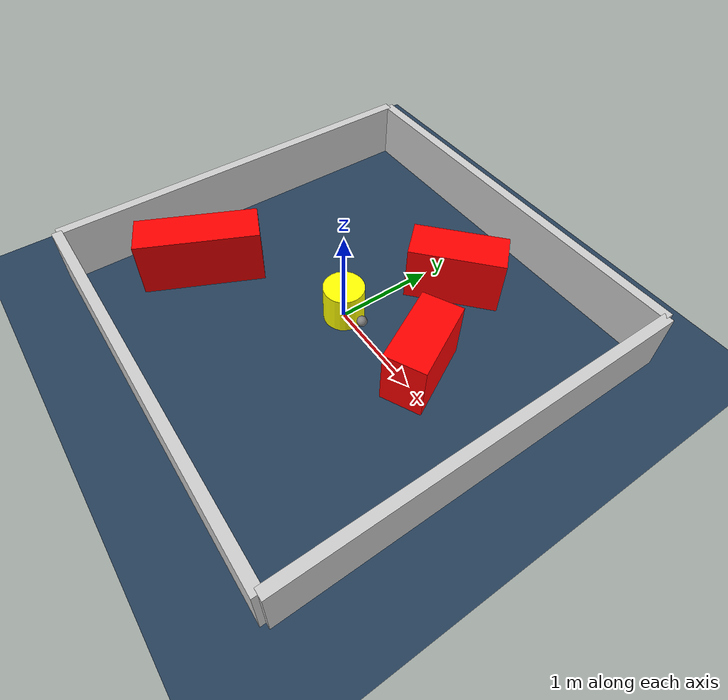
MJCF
<?xml version="1.0" ?>
<mujoco model="generated_environment">
  <option timestep="0.01" integrator="RK4" cone="elliptic"/>
  <default>
    <geom density="1"/>
  </default>
  <asset>
    <texture builtin="gradient" height="3072" rgb1="0.3 0.5 0.7" rgb2="0 0 0" type="skybox" width="512"/>
    <texture builtin="checker" height="300" mark="edge" markrgb="0.8 0.8 0.8" name="groundplane" rgb1="0.2 0.3 0.4" rgb2="0.1 0.2 0.3" type="2d" width="300"/>
    <material name="groundplane" reflectance="0.2" texrepeat="5 5" texture="groundplane" texuniform="true"/>
    <material name="robot" rgba="0.0 1.0 0.0 1"/>
  </asset>
  <worldbody>
    <light dir="0 0 -1" directional="true" pos="0 0 1.5"/>
    <geom condim="4" friction="1.0 0.005 0.001" material="groundplane" name="floor" size="0 0 0.05" type="plane"/>
    <body name="walls">
      <geom name="wall_1" condim="4" pos="-2.0 0.0 0.3" rgba="0.800000011920929 0.800000011920929 0.800000011920929 1.0" size="0.05 2.0 0.3" type="box"/>
      <geom name="wall_2" condim="4" pos="2.0 0.0 0.3" rgba="0.800000011920929 0.800000011920929 0.800000011920929 1.0" size="0.05 2.0 0.3" type="box"/>
      <geom name="wall_3" condim="4" pos="0.0 -2.0 0.3" rgba="0.800000011920929 0.800000011920929 0.800000011920929 1.0" size="2.0 0.05 0.3" type="box"/>
      <geom name="wall_4" condim="4" pos="0.0 2.0 0.3" rgba="0.800000011920929 0.800000011920929 0.800000011920929 1.0" size="2.0 0.05 0.3" type="box"/>
    </body>
    <body name="robot">
      <joint name="joint_x" type="slide" pos="0 0 0" axis="1 0 0"/>
      <joint name="joint_y" type="slide" pos="0 0 0" axis="0 1 0"/>
      <geom name="robot" type="sphere" pos="0.3 0.0 0.2" size="0.05" mass="5." friction="1.0 0.005 0.0001" condim="4" rgba="0.5 0.5 0.5 1.0"/>
      <site name="sensor_ball"/>
    </body>
    <body name="obstacle_movable_1">
      <geom name="obstacle_movable_1" condim="4" pos="0.0 0.0 0.2" euler="0 0 0.0" friction="1.0 0.005 0.001" rgba="1.0 1.0 0.0 1.0" size="0.2 0.2 0.0" type="cylinder" mass="0.1"/>
      <joint type="free"/>
    </body>
    <body name="obstacle_2_static">
      <geom name="obstacle_2_static" condim="4" pos="0.9506569442235828 0.17413344397333175 0.3" euler="0 0 296.95696263930563" friction="1.0 0.005 0.001" rgba="1 0 0 1" size="0.39887830880923636 0.2 0.3" type="box"/>
    </body>
    <body name="obstacle_3_static">
      <geom name="obstacle_3_static" condim="4" pos="-1.2969005355269396 -0.8574723945389252 0.3" euler="0 0 245.25246124343278" friction="1.0 0.005 0.001" rgba="1 0 0 1" size="0.6045121062281903 0.2 0.3" type="box"/>
    </body>
    <body name="obstacle_4_static">
      <geom name="obstacle_4_static" condim="4" pos="0.32380871519442644 1.1022270348271326 0.3" euler="0 0 222.23202871607901" friction="1.0 0.005 0.001" rgba="1 0 0 1" size="0.46235435789664625 0.2 0.3" type="box"/>
    </body>
  </worldbody>
  <actuator>
    <motor name="actuator_x" joint="joint_x" gear="1" ctrlrange="-1 1"/>
    <motor name="actuator_y" joint="joint_y" gear="1" ctrlrange="-1 1"/>
  </actuator>
</mujoco>
